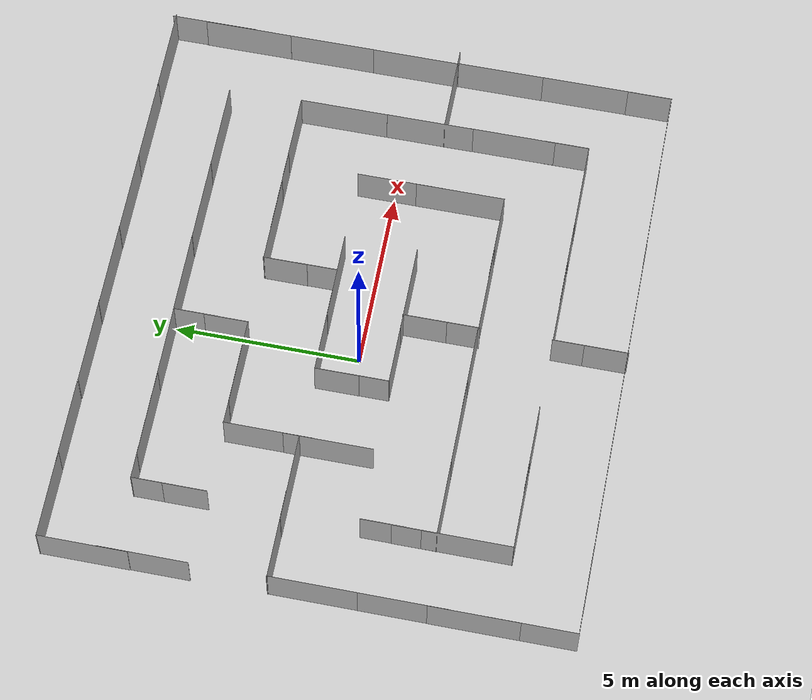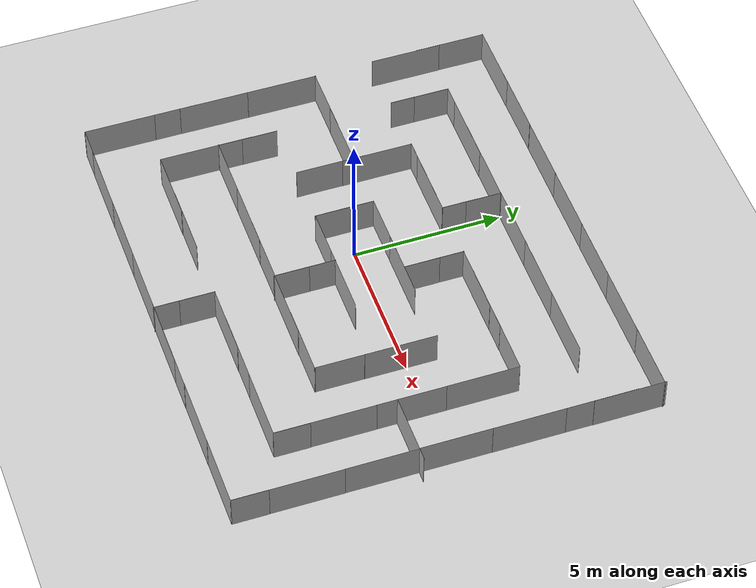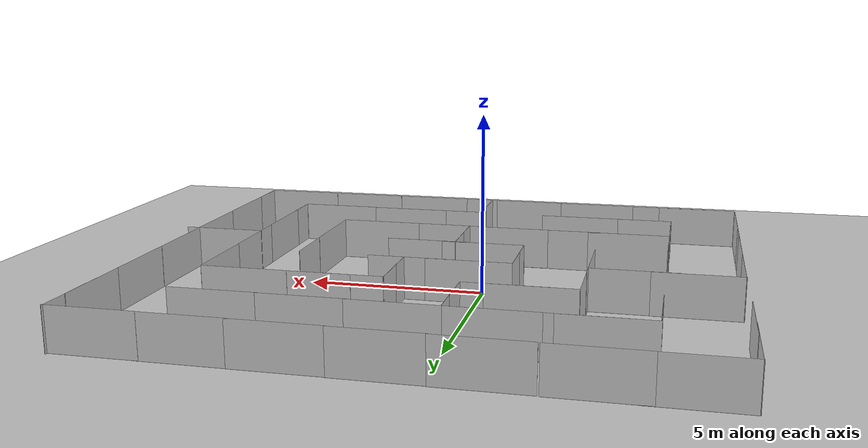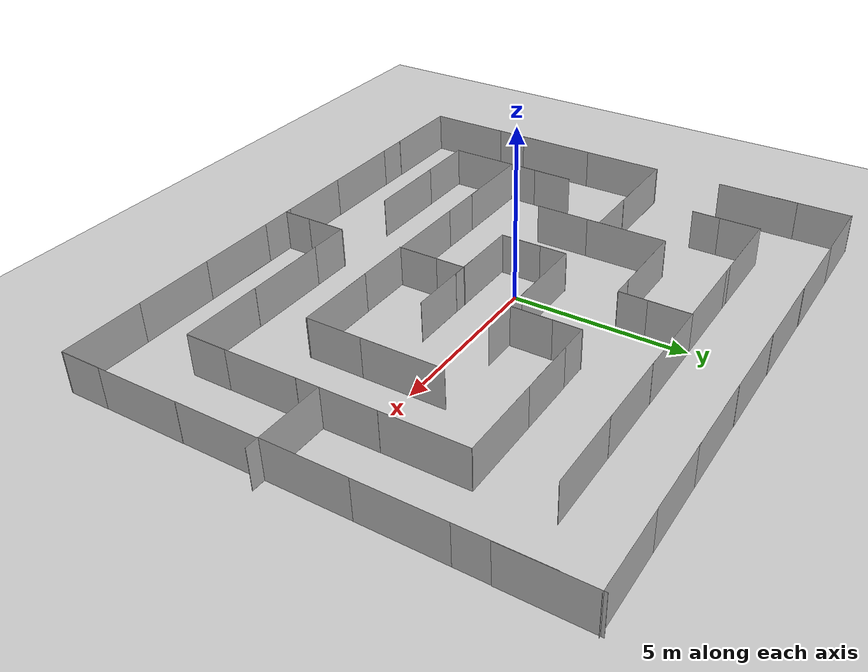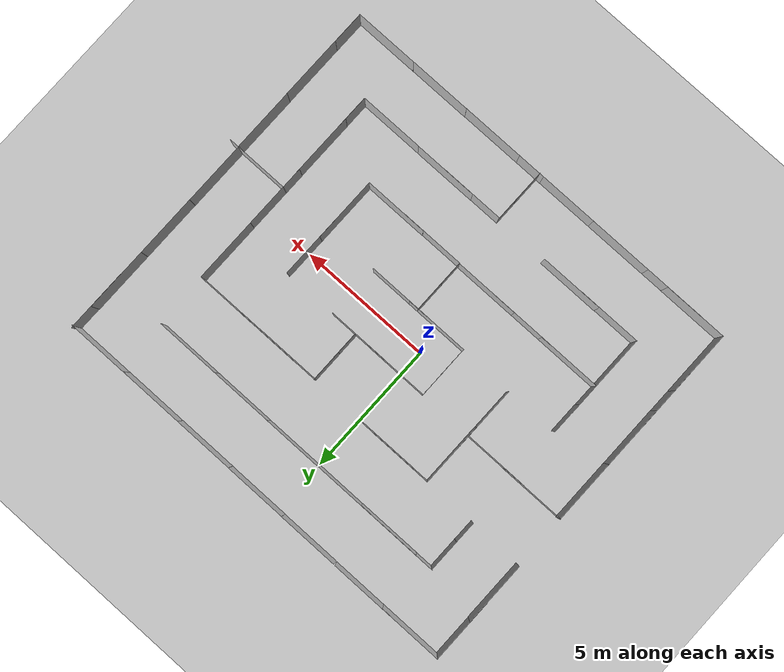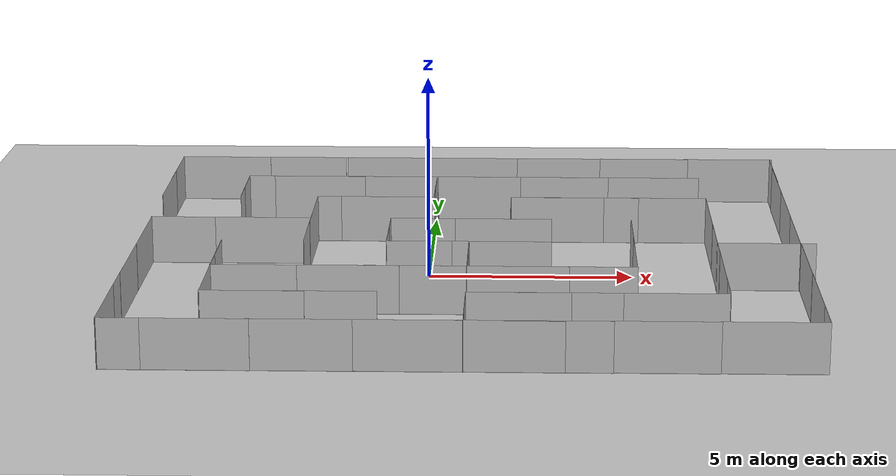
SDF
<sdf version="1.7">
 <world name="default">
  <light name="sun" type="directional">
   <pose>0 0 10 0 -0 0</pose>
   <diffuse>0.8 0.8 0.8 1</diffuse>
   <specular>0.2 0.2 0.2 1</specular>
   <attenuation>
    <range>1000</range>
    <constant>0.9</constant>
    <linear>0.01</linear>
    <quadratic>0.001</quadratic>
   </attenuation>
   <direction>-0.5 0.1 -0.9</direction>
   <spot><inner_angle>0</inner_angle><outer_angle>0</outer_angle><falloff>0</falloff></spot>
  </light>
  <model name="ground_plane">
   <static>1</static>
   <link name="link">
    <collision name="collision">
     <geometry><plane><normal>0 0 1</normal><size>100 100</size></plane></geometry>
     <surface>
      <contact><collide_bitmask>65535</collide_bitmask></contact>
      <friction><ode><mu>100</mu><mu2>50</mu2></ode></friction>
     </surface>
    </collision>
    <visual name="visual">
     <cast_shadows>0</cast_shadows>
     <geometry><plane><normal>0 0 1</normal><size>100 100</size></plane></geometry>
     <material>
      <script><uri>file://media/materials/scripts/gazebo.material</uri><name>Gazebo/Grey</name></script>
     </material>
    </visual>
   </link>
  </model>
  <gravity>0 0 -9.8</gravity>
  <magnetic_field>6e-06 2.3e-05 -4.2e-05</magnetic_field>
  <atmosphere type="adiabatic"/>
  <physics type="ode">
   <max_step_size>0.001</max_step_size>
   <real_time_factor>1</real_time_factor>
   <real_time_update_rate>1000</real_time_update_rate>
  </physics>
  <scene><ambient>0.4 0.4 0.4 1</ambient><background>0.7 0.7 0.7 1</background><shadows>1</shadows></scene>
  <audio><device>default</device></audio>
  <spherical_coordinates>
   <surface_model>EARTH_WGS84</surface_model>
   <latitude_deg>0</latitude_deg>
   <longitude_deg>0</longitude_deg>
   <elevation>0</elevation>
   <heading_deg>0</heading_deg>
  </spherical_coordinates>
  <model name="nist_maze_wall_240">
   <static>1</static>
   <link name="nist__maze_wall_240_link">
    <collision name="collision">
     <geometry>
      <mesh><uri>model://nist_maze_wall_240/meshes/nist_maze_wall_240.dae</uri><scale>1 1 1</scale></mesh>
     </geometry>
    </collision>
    <visual name="visual">
     <geometry>
      <mesh><uri>model://nist_maze_wall_240/meshes/nist_maze_wall_240.dae</uri><scale>1 1 1</scale></mesh>
     </geometry>
    </visual>
   </link>
   <pose>1.40515 0.390342 0.602034 0 -1.56897 0</pose>
  </model>
  <model name="nist_maze_wall_120">
   <static>1</static>
   <link name="nist_maze_wall_120_link">
    <collision name="collision">
     <geometry>
      <mesh><uri>model://nist_maze_wall_120/meshes/nist_maze_wall_120.dae</uri><scale>1 1 1</scale></mesh>
     </geometry>
    </collision>
    <visual name="visual">
     <geometry>
      <mesh><uri>model://nist_maze_wall_120/meshes/nist_maze_wall_120.dae</uri><scale>1 1 1</scale></mesh>
     </geometry>
    </visual>
   </link>
   <pose>-1.59821 0.408043 0 0 0 -1.57317</pose>
  </model>
  <model name="nist_maze_wall_120_clone">
   <static>1</static>
   <link name="nist_maze_wall_120_link">
    <collision name="collision">
     <geometry>
      <mesh><uri>model://nist_maze_wall_120/meshes/nist_maze_wall_120.dae</uri><scale>1 1 1</scale></mesh>
     </geometry>
    </collision>
    <visual name="visual">
     <geometry>
      <mesh><uri>model://nist_maze_wall_120/meshes/nist_maze_wall_120.dae</uri><scale>1 1 1</scale></mesh>
     </geometry>
    </visual>
   </link>
   <pose>-1.59657 -0.40071 0 0 0 -1.57317</pose>
  </model>
  <model name="nist_maze_wall_240_clone">
   <static>1</static>
   <link name="nist__maze_wall_240_link">
    <collision name="collision">
     <geometry>
      <mesh><uri>model://nist_maze_wall_240/meshes/nist_maze_wall_240.dae</uri><scale>1 1 1</scale></mesh>
     </geometry>
    </collision>
    <visual name="visual">
     <geometry>
      <mesh><uri>model://nist_maze_wall_240/meshes/nist_maze_wall_240.dae</uri><scale>1 1 1</scale></mesh>
     </geometry>
    </visual>
   </link>
   <pose>1.39248 -1.59308 0.602034 0 -1.56897 0</pose>
  </model>
  <model name="nist_maze_wall_240_clone_clone">
   <static>1</static>
   <link name="nist__maze_wall_240_link">
    <collision name="collision">
     <geometry>
      <mesh><uri>model://nist_maze_wall_240/meshes/nist_maze_wall_240.dae</uri><scale>1 1 1</scale></mesh>
     </geometry>
    </collision>
    <visual name="visual">
     <geometry>
      <mesh><uri>model://nist_maze_wall_240/meshes/nist_maze_wall_240.dae</uri><scale>1 1 1</scale></mesh>
     </geometry>
    </visual>
   </link>
   <pose>2.99602 -1.59428 0.602034 0 -1.56897 0</pose>
  </model>
  <model name="nist_maze_wall_240_clone_clone_0">
   <static>1</static>
   <link name="nist__maze_wall_240_link">
    <collision name="collision">
     <geometry>
      <mesh><uri>model://nist_maze_wall_240/meshes/nist_maze_wall_240.dae</uri><scale>1 1 1</scale></mesh>
     </geometry>
    </collision>
    <visual name="visual">
     <geometry>
      <mesh><uri>model://nist_maze_wall_240/meshes/nist_maze_wall_240.dae</uri><scale>1 1 1</scale></mesh>
     </geometry>
    </visual>
   </link>
   <pose>3.01566 0.386097 0.602034 0 -1.56897 0</pose>
  </model>
  <model name="nist_maze_wall_240_clone_clone_clone">
   <static>1</static>
   <link name="nist__maze_wall_240_link">
    <collision name="collision">
     <geometry>
      <mesh><uri>model://nist_maze_wall_240/meshes/nist_maze_wall_240.dae</uri><scale>1 1 1</scale></mesh>
     </geometry>
    </collision>
    <visual name="visual">
     <geometry>
      <mesh><uri>model://nist_maze_wall_240/meshes/nist_maze_wall_240.dae</uri><scale>1 1 1</scale></mesh>
     </geometry>
    </visual>
   </link>
   <pose>4.39011 -1.3813 0.602118 -1.57332 -1.56897 -1.5e-05</pose>
  </model>
  <model name="nist_maze_wall_240_clone_clone_clone_clone">
   <static>1</static>
   <link name="nist__maze_wall_240_link">
    <collision name="collision">
     <geometry>
      <mesh><uri>model://nist_maze_wall_240/meshes/nist_maze_wall_240.dae</uri><scale>1 1 1</scale></mesh>
     </geometry>
    </collision>
    <visual name="visual">
     <geometry>
      <mesh><uri>model://nist_maze_wall_240/meshes/nist_maze_wall_240.dae</uri><scale>1 1 1</scale></mesh>
     </geometry>
    </visual>
   </link>
   <pose>4.38361 -2.99384 0.602118 -1.57332 -1.56897 -1.5e-05</pose>
  </model>
  <model name="nist_maze_wall_240_clone_clone_clone_0">
   <static>1</static>
   <link name="nist__maze_wall_240_link">
    <collision name="collision">
     <geometry>
      <mesh><uri>model://nist_maze_wall_240/meshes/nist_maze_wall_240.dae</uri><scale>1 1 1</scale></mesh>
     </geometry>
    </collision>
    <visual name="visual">
     <geometry>
      <mesh><uri>model://nist_maze_wall_240/meshes/nist_maze_wall_240.dae</uri><scale>1 1 1</scale></mesh>
     </geometry>
    </visual>
   </link>
   <pose>4.99951 -3.61411 0.602034 0 -1.56897 0</pose>
  </model>
  <model name="nist_maze_wall_240_clone_clone_clone_1">
   <static>1</static>
   <link name="nist__maze_wall_240_link">
    <collision name="collision">
     <geometry>
      <mesh><uri>model://nist_maze_wall_240/meshes/nist_maze_wall_240.dae</uri><scale>1 1 1</scale></mesh>
     </geometry>
    </collision>
    <visual name="visual">
     <geometry>
      <mesh><uri>model://nist_maze_wall_240/meshes/nist_maze_wall_240.dae</uri><scale>1 1 1</scale></mesh>
     </geometry>
    </visual>
   </link>
   <pose>3.39906 -3.62246 0.602034 0 -1.56897 0</pose>
  </model>
  <model name="nist_maze_wall_120_clone_0">
   <static>1</static>
   <link name="nist_maze_wall_120_link">
    <collision name="collision">
     <geometry>
      <mesh><uri>model://nist_maze_wall_120/meshes/nist_maze_wall_120.dae</uri><scale>1 1 1</scale></mesh>
     </geometry>
    </collision>
    <visual name="visual">
     <geometry>
      <mesh><uri>model://nist_maze_wall_120/meshes/nist_maze_wall_120.dae</uri><scale>1 1 1</scale></mesh>
     </geometry>
    </visual>
   </link>
   <pose>0.399402 -2.45221 0 0 0 -1.57317</pose>
  </model>
  <model name="nist_maze_wall_120_clone_1">
   <static>1</static>
   <link name="nist_maze_wall_120_link">
    <collision name="collision">
     <geometry>
      <mesh><uri>model://nist_maze_wall_120/meshes/nist_maze_wall_120.dae</uri><scale>1 1 1</scale></mesh>
     </geometry>
    </collision>
    <visual name="visual">
     <geometry>
      <mesh><uri>model://nist_maze_wall_120/meshes/nist_maze_wall_120.dae</uri><scale>1 1 1</scale></mesh>
     </geometry>
    </visual>
   </link>
   <pose>0.399606 -1.56878 0 0 0 -1.57317</pose>
  </model>
  <model name="nist_maze_wall_240_clone_clone_clone_1_clone">
   <static>1</static>
   <link name="nist__maze_wall_240_link">
    <collision name="collision">
     <geometry>
      <mesh><uri>model://nist_maze_wall_240/meshes/nist_maze_wall_240.dae</uri><scale>1 1 1</scale></mesh>
     </geometry>
    </collision>
    <visual name="visual">
     <geometry>
      <mesh><uri>model://nist_maze_wall_240/meshes/nist_maze_wall_240.dae</uri><scale>1 1 1</scale></mesh>
     </geometry>
    </visual>
   </link>
   <pose>0.97815 -3.60634 0.602034 0 -1.56897 0</pose>
  </model>
  <model name="nist_maze_wall_240_clone_clone_clone_1_clone_clone">
   <static>1</static>
   <link name="nist__maze_wall_240_link">
    <collision name="collision">
     <geometry>
      <mesh><uri>model://nist_maze_wall_240/meshes/nist_maze_wall_240.dae</uri><scale>1 1 1</scale></mesh>
     </geometry>
    </collision>
    <visual name="visual">
     <geometry>
      <mesh><uri>model://nist_maze_wall_240/meshes/nist_maze_wall_240.dae</uri><scale>1 1 1</scale></mesh>
     </geometry>
    </visual>
   </link>
   <pose>-0.586526 -3.60882 0.602034 0 -1.56897 0</pose>
  </model>
  <model name="nist_maze_wall_240_clone_clone_clone_clone_0">
   <static>1</static>
   <link name="nist__maze_wall_240_link">
    <collision name="collision">
     <geometry>
      <mesh><uri>model://nist_maze_wall_240/meshes/nist_maze_wall_240.dae</uri><scale>1 1 1</scale></mesh>
     </geometry>
    </collision>
    <visual name="visual">
     <geometry>
      <mesh><uri>model://nist_maze_wall_240/meshes/nist_maze_wall_240.dae</uri><scale>1 1 1</scale></mesh>
     </geometry>
    </visual>
   </link>
   <pose>-3.60878 -0.967798 0.602118 -1.57329 -1.56897 -4.5e-05</pose>
  </model>
  <model name="nist_maze_wall_240_clone_clone_clone_1_clone_clone_clone">
   <static>1</static>
   <link name="nist__maze_wall_240_link">
    <collision name="collision">
     <geometry>
      <mesh><uri>model://nist_maze_wall_240/meshes/nist_maze_wall_240.dae</uri><scale>1 1 1</scale></mesh>
     </geometry>
    </collision>
    <visual name="visual">
     <geometry>
      <mesh><uri>model://nist_maze_wall_240/meshes/nist_maze_wall_240.dae</uri><scale>1 1 1</scale></mesh>
     </geometry>
    </visual>
   </link>
   <pose>-2.62357 -3.60866 0.602034 0 -1.56897 0</pose>
  </model>
  <model name="nist_maze_wall_120_clone_1_clone">
   <static>1</static>
   <link name="nist_maze_wall_120_link">
    <collision name="collision">
     <geometry>
      <mesh><uri>model://nist_maze_wall_120/meshes/nist_maze_wall_120.dae</uri><scale>1 1 1</scale></mesh>
     </geometry>
    </collision>
    <visual name="visual">
     <geometry>
      <mesh><uri>model://nist_maze_wall_120/meshes/nist_maze_wall_120.dae</uri><scale>1 1 1</scale></mesh>
     </geometry>
    </visual>
   </link>
   <pose>-5.60658 -2.42083 0 0 0 -1.57317</pose>
  </model>
  <model name="nist_maze_wall_120_clone_1_clone_clone">
   <static>1</static>
   <link name="nist_maze_wall_120_link">
    <collision name="collision">
     <geometry>
      <mesh><uri>model://nist_maze_wall_120/meshes/nist_maze_wall_120.dae</uri><scale>1 1 1</scale></mesh>
     </geometry>
    </collision>
    <visual name="visual">
     <geometry>
      <mesh><uri>model://nist_maze_wall_120/meshes/nist_maze_wall_120.dae</uri><scale>1 1 1</scale></mesh>
     </geometry>
    </visual>
   </link>
   <pose>-5.59718 -1.59661 0 0 0 -1.57317</pose>
  </model>
  <model name="nist_maze_wall_240_clone_clone_clone_clone_0_clone">
   <static>1</static>
   <link name="nist__maze_wall_240_link">
    <collision name="collision">
     <geometry>
      <mesh><uri>model://nist_maze_wall_240/meshes/nist_maze_wall_240.dae</uri><scale>1 1 1</scale></mesh>
     </geometry>
    </collision>
    <visual name="visual">
     <geometry>
      <mesh><uri>model://nist_maze_wall_240/meshes/nist_maze_wall_240.dae</uri><scale>1 1 1</scale></mesh>
     </geometry>
    </visual>
   </link>
   <pose>-3.59983 0.616268 0.602118 -1.57329 -1.56897 -4.5e-05</pose>
  </model>
  <model name="nist_maze_wall_120_clone_1_clone_1">
   <static>1</static>
   <link name="nist_maze_wall_120_link">
    <collision name="collision">
     <geometry>
      <mesh><uri>model://nist_maze_wall_120/meshes/nist_maze_wall_120.dae</uri><scale>1 1 1</scale></mesh>
     </geometry>
    </collision>
    <visual name="visual">
     <geometry>
      <mesh><uri>model://nist_maze_wall_120/meshes/nist_maze_wall_120.dae</uri><scale>1 1 1</scale></mesh>
     </geometry>
    </visual>
   </link>
   <pose>1.38877 2.41337 0 0 0 -1.57317</pose>
  </model>
  <model name="nist_maze_wall_120_clone_1_clone_0">
   <static>1</static>
   <link name="nist_maze_wall_120_link">
    <collision name="collision">
     <geometry>
      <mesh><uri>model://nist_maze_wall_120/meshes/nist_maze_wall_120.dae</uri><scale>1 1 1</scale></mesh>
     </geometry>
    </collision>
    <visual name="visual">
     <geometry>
      <mesh><uri>model://nist_maze_wall_120/meshes/nist_maze_wall_120.dae</uri><scale>1 1 1</scale></mesh>
     </geometry>
    </visual>
   </link>
   <pose>1.39138 1.58684 0 0 0 -1.57317</pose>
  </model>
  <model name="nist_maze_wall_240_clone_clone_0_clone">
   <static>1</static>
   <link name="nist__maze_wall_240_link">
    <collision name="collision">
     <geometry>
      <mesh><uri>model://nist_maze_wall_240/meshes/nist_maze_wall_240.dae</uri><scale>1 1 1</scale></mesh>
     </geometry>
    </collision>
    <visual name="visual">
     <geometry>
      <mesh><uri>model://nist_maze_wall_240/meshes/nist_maze_wall_240.dae</uri><scale>1 1 1</scale></mesh>
     </geometry>
    </visual>
   </link>
   <pose>4.37899 2.39128 0.602034 0 -1.56897 0</pose>
  </model>
  <model name="nist_maze_wall_240_clone_clone_0_clone_clone">
   <static>1</static>
   <link name="nist__maze_wall_240_link">
    <collision name="collision">
     <geometry>
      <mesh><uri>model://nist_maze_wall_240/meshes/nist_maze_wall_240.dae</uri><scale>1 1 1</scale></mesh>
     </geometry>
    </collision>
    <visual name="visual">
     <geometry>
      <mesh><uri>model://nist_maze_wall_240/meshes/nist_maze_wall_240.dae</uri><scale>1 1 1</scale></mesh>
     </geometry>
    </visual>
   </link>
   <pose>6.99947 2.40069 0.602034 0 -1.56897 0</pose>
  </model>
  <model name="nist_maze_wall_240_clone_clone_0_clone_0">
   <static>1</static>
   <link name="nist__maze_wall_240_link">
    <collision name="collision">
     <geometry>
      <mesh><uri>model://nist_maze_wall_240/meshes/nist_maze_wall_240.dae</uri><scale>1 1 1</scale></mesh>
     </geometry>
    </collision>
    <visual name="visual">
     <geometry>
      <mesh><uri>model://nist_maze_wall_240/meshes/nist_maze_wall_240.dae</uri><scale>1 1 1</scale></mesh>
     </geometry>
    </visual>
   </link>
   <pose>5.27167 2.39789 0.602034 0 -1.56897 0</pose>
  </model>
  <model name="nist_maze_wall_240_clone_clone_clone_clone_1">
   <static>1</static>
   <link name="nist__maze_wall_240_link">
    <collision name="collision">
     <geometry>
      <mesh><uri>model://nist_maze_wall_240/meshes/nist_maze_wall_240.dae</uri><scale>1 1 1</scale></mesh>
     </geometry>
    </collision>
    <visual name="visual">
     <geometry>
      <mesh><uri>model://nist_maze_wall_240/meshes/nist_maze_wall_240.dae</uri><scale>1 1 1</scale></mesh>
     </geometry>
    </visual>
   </link>
   <pose>6.39615 0.598142 0.602096 -1.57329 -1.56897 -4.5e-05</pose>
  </model>
  <model name="nist_maze_wall_240_clone_clone_clone_clone_2">
   <static>1</static>
   <link name="nist__maze_wall_240_link">
    <collision name="collision">
     <geometry>
      <mesh><uri>model://nist_maze_wall_240/meshes/nist_maze_wall_240.dae</uri><scale>1 1 1</scale></mesh>
     </geometry>
    </collision>
    <visual name="visual">
     <geometry>
      <mesh><uri>model://nist_maze_wall_240/meshes/nist_maze_wall_240.dae</uri><scale>1 1 1</scale></mesh>
     </geometry>
    </visual>
   </link>
   <pose>6.39314 -1.80115 0.60214 -1.57329 -1.56897 -4.5e-05</pose>
  </model>
  <model name="nist_maze_wall_240_clone_clone_clone_clone_2_clone">
   <static>1</static>
   <link name="nist__maze_wall_240_link">
    <collision name="collision">
     <geometry>
      <mesh><uri>model://nist_maze_wall_240/meshes/nist_maze_wall_240.dae</uri><scale>1 1 1</scale></mesh>
     </geometry>
    </collision>
    <visual name="visual">
     <geometry>
      <mesh><uri>model://nist_maze_wall_240/meshes/nist_maze_wall_240.dae</uri><scale>1 1 1</scale></mesh>
     </geometry>
    </visual>
   </link>
   <pose>6.39256 -4.07253 0.60214 -1.57329 -1.56897 -4.5e-05</pose>
  </model>
  <model name="nist_maze_wall_120_clone_1_clone_0_clone">
   <static>1</static>
   <link name="nist_maze_wall_120_link">
    <collision name="collision">
     <geometry>
      <mesh><uri>model://nist_maze_wall_120/meshes/nist_maze_wall_120.dae</uri><scale>1 1 1</scale></mesh>
     </geometry>
    </collision>
    <visual name="visual">
     <geometry>
      <mesh><uri>model://nist_maze_wall_120/meshes/nist_maze_wall_120.dae</uri><scale>1 1 1</scale></mesh>
     </geometry>
    </visual>
   </link>
   <pose>6.39509 -4.40326 0 0 0 -1.57317</pose>
  </model>
  <model name="nist_maze_wall_240_clone_clone_clone_0_clone">
   <static>1</static>
   <link name="nist__maze_wall_240_link">
    <collision name="collision">
     <geometry>
      <mesh><uri>model://nist_maze_wall_240/meshes/nist_maze_wall_240.dae</uri><scale>1 1 1</scale></mesh>
     </geometry>
    </collision>
    <visual name="visual">
     <geometry>
      <mesh><uri>model://nist_maze_wall_240/meshes/nist_maze_wall_240.dae</uri><scale>1 1 1</scale></mesh>
     </geometry>
    </visual>
   </link>
   <pose>6.98618 -5.60469 0.602034 0 -1.56897 0</pose>
  </model>
  <model name="nist_maze_wall_240_clone_clone_clone_0_clone_0">
   <static>1</static>
   <link name="nist__maze_wall_240_link">
    <collision name="collision">
     <geometry>
      <mesh><uri>model://nist_maze_wall_240/meshes/nist_maze_wall_240.dae</uri><scale>1 1 1</scale></mesh>
     </geometry>
    </collision>
    <visual name="visual">
     <geometry>
      <mesh><uri>model://nist_maze_wall_240/meshes/nist_maze_wall_240.dae</uri><scale>1 1 1</scale></mesh>
     </geometry>
    </visual>
   </link>
   <pose>4.59441 -5.60146 0.602034 0 -1.56897 0</pose>
  </model>
  <model name="nist_maze_wall_240_clone_clone_clone_0_clone_1">
   <static>1</static>
   <link name="nist__maze_wall_240_link">
    <collision name="collision">
     <geometry>
      <mesh><uri>model://nist_maze_wall_240/meshes/nist_maze_wall_240.dae</uri><scale>1 1 1</scale></mesh>
     </geometry>
    </collision>
    <visual name="visual">
     <geometry>
      <mesh><uri>model://nist_maze_wall_240/meshes/nist_maze_wall_240.dae</uri><scale>1 1 1</scale></mesh>
     </geometry>
    </visual>
   </link>
   <pose>3.41617 -5.60808 0.602034 0 -1.56897 0</pose>
  </model>
  <model name="nist_maze_wall_240_clone_clone_clone_0_clone_1_clone">
   <static>1</static>
   <link name="nist__maze_wall_240_link">
    <collision name="collision">
     <geometry>
      <mesh><uri>model://nist_maze_wall_240/meshes/nist_maze_wall_240.dae</uri><scale>1 1 1</scale></mesh>
     </geometry>
    </collision>
    <visual name="visual">
     <geometry>
      <mesh><uri>model://nist_maze_wall_240/meshes/nist_maze_wall_240.dae</uri><scale>1 1 1</scale></mesh>
     </geometry>
    </visual>
   </link>
   <pose>-0.979388 -5.58795 0.602034 0 -1.56897 0</pose>
  </model>
  <model name="nist_maze_wall_240_clone_clone_clone_0_clone_1_clone_clone">
   <static>1</static>
   <link name="nist__maze_wall_240_link">
    <collision name="collision">
     <geometry>
      <mesh><uri>model://nist_maze_wall_240/meshes/nist_maze_wall_240.dae</uri><scale>1 1 1</scale></mesh>
     </geometry>
    </collision>
    <visual name="visual">
     <geometry>
      <mesh><uri>model://nist_maze_wall_240/meshes/nist_maze_wall_240.dae</uri><scale>1 1 1</scale></mesh>
     </geometry>
    </visual>
   </link>
   <pose>-2.63072 -5.59677 0.60071 0 -1.56897 0</pose>
  </model>
  <model name="nist_maze_wall_240_clone_clone_clone_clone_0_clone_0">
   <static>1</static>
   <link name="nist__maze_wall_240_link">
    <collision name="collision">
     <geometry>
      <mesh><uri>model://nist_maze_wall_240/meshes/nist_maze_wall_240.dae</uri><scale>1 1 1</scale></mesh>
     </geometry>
    </collision>
    <visual name="visual">
     <geometry>
      <mesh><uri>model://nist_maze_wall_240/meshes/nist_maze_wall_240.dae</uri><scale>1 1 1</scale></mesh>
     </geometry>
    </visual>
   </link>
   <pose>-5.61453 -5.00064 0.602118 -1.57329 -1.56897 -4.5e-05</pose>
  </model>
  <model name="nist_maze_wall_120_clone_1_clone_2">
   <static>1</static>
   <link name="nist_maze_wall_120_link">
    <collision name="collision">
     <geometry>
      <mesh><uri>model://nist_maze_wall_120/meshes/nist_maze_wall_120.dae</uri><scale>1 1 1</scale></mesh>
     </geometry>
    </collision>
    <visual name="visual">
     <geometry>
      <mesh><uri>model://nist_maze_wall_120/meshes/nist_maze_wall_120.dae</uri><scale>1 1 1</scale></mesh>
     </geometry>
    </visual>
   </link>
   <pose>0.417438 -5.57984 0 0 0 -1.57317</pose>
  </model>
  <model name="nist_maze_wall_120_clone_1_clone_3">
   <static>1</static>
   <link name="nist_maze_wall_120_link">
    <collision name="collision">
     <geometry>
      <mesh><uri>model://nist_maze_wall_120/meshes/nist_maze_wall_120.dae</uri><scale>1 1 1</scale></mesh>
     </geometry>
    </collision>
    <visual name="visual">
     <geometry>
      <mesh><uri>model://nist_maze_wall_120/meshes/nist_maze_wall_120.dae</uri><scale>1 1 1</scale></mesh>
     </geometry>
    </visual>
   </link>
   <pose>0.414734 -6.427 0 0 0 -1.57317</pose>
  </model>
  <model name="nist_maze_wall_240_clone_clone_clone_0_clone_1_clone_clone_0">
   <static>1</static>
   <link name="nist__maze_wall_240_link">
    <collision name="collision">
     <geometry>
      <mesh><uri>model://nist_maze_wall_240/meshes/nist_maze_wall_240.dae</uri><scale>1 1 1</scale></mesh>
     </geometry>
    </collision>
    <visual name="visual">
     <geometry>
      <mesh><uri>model://nist_maze_wall_240/meshes/nist_maze_wall_240.dae</uri><scale>1 1 1</scale></mesh>
     </geometry>
    </visual>
   </link>
   <pose>1.0048 -7.60288 0.602034 0 -1.56897 0</pose>
  </model>
  <model name="nist_maze_wall_240_clone_clone_clone_0_clone_1_clone_clone_1">
   <static>1</static>
   <link name="nist__maze_wall_240_link">
    <collision name="collision">
     <geometry>
      <mesh><uri>model://nist_maze_wall_240/meshes/nist_maze_wall_240.dae</uri><scale>1 1 1</scale></mesh>
     </geometry>
    </collision>
    <visual name="visual">
     <geometry>
      <mesh><uri>model://nist_maze_wall_240/meshes/nist_maze_wall_240.dae</uri><scale>1 1 1</scale></mesh>
     </geometry>
    </visual>
   </link>
   <pose>-1.34618 -7.60269 0.602034 0 -1.56897 0</pose>
  </model>
  <model name="nist_maze_wall_240_clone_clone_clone_0_clone_1_clone_clone_2">
   <static>1</static>
   <link name="nist__maze_wall_240_link">
    <collision name="collision">
     <geometry>
      <mesh><uri>model://nist_maze_wall_240/meshes/nist_maze_wall_240.dae</uri><scale>1 1 1</scale></mesh>
     </geometry>
    </collision>
    <visual name="visual">
     <geometry>
      <mesh><uri>model://nist_maze_wall_240/meshes/nist_maze_wall_240.dae</uri><scale>1 1 1</scale></mesh>
     </geometry>
    </visual>
   </link>
   <pose>-3.65461 -7.60467 0.602034 0 -1.56897 0</pose>
  </model>
  <model name="nist_maze_wall_240_clone_clone_clone_0_clone_1_clone_clone_3">
   <static>1</static>
   <link name="nist__maze_wall_240_link">
    <collision name="collision">
     <geometry>
      <mesh><uri>model://nist_maze_wall_240/meshes/nist_maze_wall_240.dae</uri><scale>1 1 1</scale></mesh>
     </geometry>
    </collision>
    <visual name="visual">
     <geometry>
      <mesh><uri>model://nist_maze_wall_240/meshes/nist_maze_wall_240.dae</uri><scale>1 1 1</scale></mesh>
     </geometry>
    </visual>
   </link>
   <pose>-4.60571 -7.60082 0.602034 0 -1.56897 0</pose>
  </model>
  <model name="nist_maze_wall_240_clone_0">
   <static>1</static>
   <link name="nist__maze_wall_240_link">
    <collision name="collision">
     <geometry>
      <mesh><uri>model://nist_maze_wall_240/meshes/nist_maze_wall_240.dae</uri><scale>1 1 1</scale></mesh>
     </geometry>
    </collision>
    <visual name="visual">
     <geometry>
      <mesh><uri>model://nist_maze_wall_240/meshes/nist_maze_wall_240.dae</uri><scale>1 1 1</scale></mesh>
     </geometry>
    </visual>
   </link>
   <pose>-0.595336 2.39938 0.601973 0 -1.56897 0</pose>
  </model>
  <model name="nist_maze_wall_240_clone_1">
   <static>1</static>
   <link name="nist__maze_wall_240_link">
    <collision name="collision">
     <geometry>
      <mesh><uri>model://nist_maze_wall_240/meshes/nist_maze_wall_240.dae</uri><scale>1 1 1</scale></mesh>
     </geometry>
    </collision>
    <visual name="visual">
     <geometry>
      <mesh><uri>model://nist_maze_wall_240/meshes/nist_maze_wall_240.dae</uri><scale>1 1 1</scale></mesh>
     </geometry>
    </visual>
   </link>
   <pose>0.01066 2.39543 0.602034 0 -1.56897 0</pose>
  </model>
  <model name="nist_maze_wall_240_clone_1_clone">
   <static>1</static>
   <link name="nist__maze_wall_240_link">
    <collision name="collision">
     <geometry>
      <mesh><uri>model://nist_maze_wall_240/meshes/nist_maze_wall_240.dae</uri><scale>1 1 1</scale></mesh>
     </geometry>
    </collision>
    <visual name="visual">
     <geometry>
      <mesh><uri>model://nist_maze_wall_240/meshes/nist_maze_wall_240.dae</uri><scale>1 1 1</scale></mesh>
     </geometry>
    </visual>
   </link>
   <pose>-2.99903 0.39279 0.602034 0 -1.56897 0</pose>
  </model>
  <model name="nist_maze_wall_240_clone_1_clone_clone">
   <static>1</static>
   <link name="nist__maze_wall_240_link">
    <collision name="collision">
     <geometry>
      <mesh><uri>model://nist_maze_wall_240/meshes/nist_maze_wall_240.dae</uri><scale>1 1 1</scale></mesh>
     </geometry>
    </collision>
    <visual name="visual">
     <geometry>
      <mesh><uri>model://nist_maze_wall_240/meshes/nist_maze_wall_240.dae</uri><scale>1 1 1</scale></mesh>
     </geometry>
    </visual>
   </link>
   <pose>-4.6116 0.401665 0.602034 0 -1.56897 0</pose>
  </model>
  <model name="nist_maze_wall_240_clone_clone_clone_clone_0_clone_0_clone">
   <static>1</static>
   <link name="nist__maze_wall_240_link">
    <collision name="collision">
     <geometry>
      <mesh><uri>model://nist_maze_wall_240/meshes/nist_maze_wall_240.dae</uri><scale>1 1 1</scale></mesh>
     </geometry>
    </collision>
    <visual name="visual">
     <geometry>
      <mesh><uri>model://nist_maze_wall_240/meshes/nist_maze_wall_240.dae</uri><scale>1 1 1</scale></mesh>
     </geometry>
    </visual>
   </link>
   <pose>-7.60244 -1.37264 0.602118 -1.57329 -1.56897 -4.5e-05</pose>
  </model>
  <model name="nist_maze_wall_240_clone_clone_clone_clone_0_clone_0_clone_0">
   <static>1</static>
   <link name="nist__maze_wall_240_link">
    <collision name="collision">
     <geometry>
      <mesh><uri>model://nist_maze_wall_240/meshes/nist_maze_wall_240.dae</uri><scale>1 1 1</scale></mesh>
     </geometry>
    </collision>
    <visual name="visual">
     <geometry>
      <mesh><uri>model://nist_maze_wall_240/meshes/nist_maze_wall_240.dae</uri><scale>1 1 1</scale></mesh>
     </geometry>
    </visual>
   </link>
   <pose>-7.61006 -3.72948 0.602118 -1.57329 -1.56897 -4.5e-05</pose>
  </model>
  <model name="nist_maze_wall_240_clone_clone_clone_clone_0_clone_0_clone_1">
   <static>1</static>
   <link name="nist__maze_wall_240_link">
    <collision name="collision">
     <geometry>
      <mesh><uri>model://nist_maze_wall_240/meshes/nist_maze_wall_240.dae</uri><scale>1 1 1</scale></mesh>
     </geometry>
    </collision>
    <visual name="visual">
     <geometry>
      <mesh><uri>model://nist_maze_wall_240/meshes/nist_maze_wall_240.dae</uri><scale>1 1 1</scale></mesh>
     </geometry>
    </visual>
   </link>
   <pose>-7.61879 -5.52545 0.602118 -1.57329 -1.56897 -4.5e-05</pose>
  </model>
  <model name="nist_maze_wall_240_clone_clone_clone_clone_0_clone_0_clone_2">
   <static>1</static>
   <link name="nist__maze_wall_240_link">
    <collision name="collision">
     <geometry>
      <mesh><uri>model://nist_maze_wall_240/meshes/nist_maze_wall_240.dae</uri><scale>1 1 1</scale></mesh>
     </geometry>
    </collision>
    <visual name="visual">
     <geometry>
      <mesh><uri>model://nist_maze_wall_240/meshes/nist_maze_wall_240.dae</uri><scale>1 1 1</scale></mesh>
     </geometry>
    </visual>
   </link>
   <pose>-7.62107 -7.01022 0.602118 -1.57329 -1.56897 -4.5e-05</pose>
  </model>
  <model name="nist_maze_wall_120_clone_1_clone_1_clone">
   <static>1</static>
   <link name="nist_maze_wall_120_link">
    <collision name="collision">
     <geometry>
      <mesh><uri>model://nist_maze_wall_120/meshes/nist_maze_wall_120.dae</uri><scale>1 1 1</scale></mesh>
     </geometry>
    </collision>
    <visual name="visual">
     <geometry>
      <mesh><uri>model://nist_maze_wall_120/meshes/nist_maze_wall_120.dae</uri><scale>1 1 1</scale></mesh>
     </geometry>
    </visual>
   </link>
   <pose>-0.596304 3.59284 0 0 0 -1.57317</pose>
  </model>
  <model name="nist_maze_wall_120_clone_1_clone_1_clone_0">
   <static>1</static>
   <link name="nist_maze_wall_120_link">
    <collision name="collision">
     <geometry>
      <mesh><uri>model://nist_maze_wall_120/meshes/nist_maze_wall_120.dae</uri><scale>1 1 1</scale></mesh>
     </geometry>
    </collision>
    <visual name="visual">
     <geometry>
      <mesh><uri>model://nist_maze_wall_120/meshes/nist_maze_wall_120.dae</uri><scale>1 1 1</scale></mesh>
     </geometry>
    </visual>
   </link>
   <pose>-0.587925 4.41592 0 0 0 -1.57317</pose>
  </model>
  <model name="nist_maze_wall_240_clone_0_clone">
   <static>1</static>
   <link name="nist__maze_wall_240_link">
    <collision name="collision">
     <geometry>
      <mesh><uri>model://nist_maze_wall_240/meshes/nist_maze_wall_240.dae</uri><scale>1 1 1</scale></mesh>
     </geometry>
    </collision>
    <visual name="visual">
     <geometry>
      <mesh><uri>model://nist_maze_wall_240/meshes/nist_maze_wall_240.dae</uri><scale>1 1 1</scale></mesh>
     </geometry>
    </visual>
   </link>
   <pose>2.39629 4.41228 0.601973 0 -1.56897 0</pose>
  </model>
  <model name="nist_maze_wall_240_clone_0_clone_0">
   <static>1</static>
   <link name="nist__maze_wall_240_link">
    <collision name="collision">
     <geometry>
      <mesh><uri>model://nist_maze_wall_240/meshes/nist_maze_wall_240.dae</uri><scale>1 1 1</scale></mesh>
     </geometry>
    </collision>
    <visual name="visual">
     <geometry>
      <mesh><uri>model://nist_maze_wall_240/meshes/nist_maze_wall_240.dae</uri><scale>1 1 1</scale></mesh>
     </geometry>
    </visual>
   </link>
   <pose>4.62896 4.40823 0.601973 0 -1.56897 0</pose>
  </model>
  <model name="nist_maze_wall_240_clone_0_clone_1">
   <static>1</static>
   <link name="nist__maze_wall_240_link">
    <collision name="collision">
     <geometry>
      <mesh><uri>model://nist_maze_wall_240/meshes/nist_maze_wall_240.dae</uri><scale>1 1 1</scale></mesh>
     </geometry>
    </collision>
    <visual name="visual">
     <geometry>
      <mesh><uri>model://nist_maze_wall_240/meshes/nist_maze_wall_240.dae</uri><scale>1 1 1</scale></mesh>
     </geometry>
    </visual>
   </link>
   <pose>6.95569 4.4063 0.601973 0 -1.56897 0</pose>
  </model>
  <model name="nist_maze_wall_240_clone_clone_0_clone_clone_clone">
   <static>1</static>
   <link name="nist__maze_wall_240_link">
    <collision name="collision">
     <geometry>
      <mesh><uri>model://nist_maze_wall_240/meshes/nist_maze_wall_240.dae</uri><scale>1 1 1</scale></mesh>
     </geometry>
    </collision>
    <visual name="visual">
     <geometry>
      <mesh><uri>model://nist_maze_wall_240/meshes/nist_maze_wall_240.dae</uri><scale>1 1 1</scale></mesh>
     </geometry>
    </visual>
   </link>
   <pose>9.3815 -1.60774 0.601955 0 -1.56897 0</pose>
  </model>
  <model name="nist_maze_wall_240_clone_clone_clone_clone_3">
   <static>1</static>
   <link name="nist__maze_wall_240_link">
    <collision name="collision">
     <geometry>
      <mesh><uri>model://nist_maze_wall_240/meshes/nist_maze_wall_240.dae</uri><scale>1 1 1</scale></mesh>
     </geometry>
    </collision>
    <visual name="visual">
     <geometry>
      <mesh><uri>model://nist_maze_wall_240/meshes/nist_maze_wall_240.dae</uri><scale>1 1 1</scale></mesh>
     </geometry>
    </visual>
   </link>
   <pose>8.39995 -3.4024 0.602118 -1.57332 -1.56897 -1.5e-05</pose>
  </model>
  <model name="nist_maze_wall_240_clone_clone_clone_clone_4">
   <static>1</static>
   <link name="nist__maze_wall_240_link">
    <collision name="collision">
     <geometry>
      <mesh><uri>model://nist_maze_wall_240/meshes/nist_maze_wall_240.dae</uri><scale>1 1 1</scale></mesh>
     </geometry>
    </collision>
    <visual name="visual">
     <geometry>
      <mesh><uri>model://nist_maze_wall_240/meshes/nist_maze_wall_240.dae</uri><scale>1 1 1</scale></mesh>
     </geometry>
    </visual>
   </link>
   <pose>8.39992 -5.77568 0.602118 -1.57332 -1.56897 -1.5e-05</pose>
  </model>
  <model name="nist_maze_wall_120_clone_0_clone">
   <static>1</static>
   <link name="nist_maze_wall_120_link">
    <collision name="collision">
     <geometry>
      <mesh><uri>model://nist_maze_wall_120/meshes/nist_maze_wall_120.dae</uri><scale>1 1 1</scale></mesh>
     </geometry>
    </collision>
    <visual name="visual">
     <geometry>
      <mesh><uri>model://nist_maze_wall_120/meshes/nist_maze_wall_120.dae</uri><scale>1 1 1</scale></mesh>
     </geometry>
    </visual>
   </link>
   <pose>8.39763 -6.37314 0 0 0 -1.57317</pose>
  </model>
  <model name="nist_maze_wall_240_clone_clone_clone_0_clone_clone">
   <static>1</static>
   <link name="nist__maze_wall_240_link">
    <collision name="collision">
     <geometry>
      <mesh><uri>model://nist_maze_wall_240/meshes/nist_maze_wall_240.dae</uri><scale>1 1 1</scale></mesh>
     </geometry>
    </collision>
    <visual name="visual">
     <geometry>
      <mesh><uri>model://nist_maze_wall_240/meshes/nist_maze_wall_240.dae</uri><scale>1 1 1</scale></mesh>
     </geometry>
    </visual>
   </link>
   <pose>9.00237 -7.58961 0.602034 0 -1.56897 0</pose>
  </model>
  <model name="nist_maze_wall_240_clone_clone_clone_0_clone_clone_0">
   <static>1</static>
   <link name="nist__maze_wall_240_link">
    <collision name="collision">
     <geometry>
      <mesh><uri>model://nist_maze_wall_240/meshes/nist_maze_wall_240.dae</uri><scale>1 1 1</scale></mesh>
     </geometry>
    </collision>
    <visual name="visual">
     <geometry>
      <mesh><uri>model://nist_maze_wall_240/meshes/nist_maze_wall_240.dae</uri><scale>1 1 1</scale></mesh>
     </geometry>
    </visual>
   </link>
   <pose>6.64762 -7.59486 0.602034 0 -1.56897 0</pose>
  </model>
  <model name="nist_maze_wall_240_clone_clone_clone_0_clone_clone_1">
   <static>1</static>
   <link name="nist__maze_wall_240_link">
    <collision name="collision">
     <geometry>
      <mesh><uri>model://nist_maze_wall_240/meshes/nist_maze_wall_240.dae</uri><scale>1 1 1</scale></mesh>
     </geometry>
    </collision>
    <visual name="visual">
     <geometry>
      <mesh><uri>model://nist_maze_wall_240/meshes/nist_maze_wall_240.dae</uri><scale>1 1 1</scale></mesh>
     </geometry>
    </visual>
   </link>
   <pose>4.30335 -7.60071 0.602034 0 -1.56897 0</pose>
  </model>
  <model name="nist_maze_wall_240_clone_clone_clone_0_clone_clone_2">
   <static>1</static>
   <link name="nist__maze_wall_240_link">
    <collision name="collision">
     <geometry>
      <mesh><uri>model://nist_maze_wall_240/meshes/nist_maze_wall_240.dae</uri><scale>1 1 1</scale></mesh>
     </geometry>
    </collision>
    <visual name="visual">
     <geometry>
      <mesh><uri>model://nist_maze_wall_240/meshes/nist_maze_wall_240.dae</uri><scale>1 1 1</scale></mesh>
     </geometry>
    </visual>
   </link>
   <pose>3.24851 -7.60097 0.602034 0 -1.56897 0</pose>
  </model>
  <model name="nist_maze_wall_240_clone_clone_clone_clone_1_clone">
   <static>1</static>
   <link name="nist__maze_wall_240_link">
    <collision name="collision">
     <geometry>
      <mesh><uri>model://nist_maze_wall_240/meshes/nist_maze_wall_240.dae</uri><scale>1 1 1</scale></mesh>
     </geometry>
    </collision>
    <visual name="visual">
     <geometry>
      <mesh><uri>model://nist_maze_wall_240/meshes/nist_maze_wall_240.dae</uri><scale>1 1 1</scale></mesh>
     </geometry>
    </visual>
   </link>
   <pose>8.39197 -1.03606 0.602096 -1.57329 -1.56897 -4.5e-05</pose>
  </model>
  <model name="nist_maze_wall_240_clone_clone_clone_clone_1_clone_0">
   <static>1</static>
   <link name="nist__maze_wall_240_link">
    <collision name="collision">
     <geometry>
      <mesh><uri>model://nist_maze_wall_240/meshes/nist_maze_wall_240.dae</uri><scale>1 1 1</scale></mesh>
     </geometry>
    </collision>
    <visual name="visual">
     <geometry>
      <mesh><uri>model://nist_maze_wall_240/meshes/nist_maze_wall_240.dae</uri><scale>1 1 1</scale></mesh>
     </geometry>
    </visual>
   </link>
   <pose>8.40115 1.36538 0.602096 -1.57329 -1.56897 -4.5e-05</pose>
  </model>
  <model name="nist_maze_wall_240_clone_clone_clone_clone_1_clone_1">
   <static>1</static>
   <link name="nist__maze_wall_240_link">
    <collision name="collision">
     <geometry>
      <mesh><uri>model://nist_maze_wall_240/meshes/nist_maze_wall_240.dae</uri><scale>1 1 1</scale></mesh>
     </geometry>
    </collision>
    <visual name="visual">
     <geometry>
      <mesh><uri>model://nist_maze_wall_240/meshes/nist_maze_wall_240.dae</uri><scale>1 1 1</scale></mesh>
     </geometry>
    </visual>
   </link>
   <pose>8.40685 3.71426 0.602096 -1.57329 -1.56897 -4.5e-05</pose>
  </model>
  <model name="nist_maze_wall_240_clone_clone_clone_clone_1_clone_2">
   <static>1</static>
   <link name="nist__maze_wall_240_link">
    <collision name="collision">
     <geometry>
      <mesh><uri>model://nist_maze_wall_240/meshes/nist_maze_wall_240.dae</uri><scale>1 1 1</scale></mesh>
     </geometry>
    </collision>
    <visual name="visual">
     <geometry>
      <mesh><uri>model://nist_maze_wall_240/meshes/nist_maze_wall_240.dae</uri><scale>1 1 1</scale></mesh>
     </geometry>
    </visual>
   </link>
   <pose>8.41991 4.67083 0.602096 -1.57329 -1.56897 -4.5e-05</pose>
  </model>
  <model name="nist_maze_wall_240_clone_0_clone_1_clone">
   <static>1</static>
   <link name="nist__maze_wall_240_link">
    <collision name="collision">
     <geometry>
      <mesh><uri>model://nist_maze_wall_240/meshes/nist_maze_wall_240.dae</uri><scale>1 1 1</scale></mesh>
     </geometry>
    </collision>
    <visual name="visual">
     <geometry>
      <mesh><uri>model://nist_maze_wall_240/meshes/nist_maze_wall_240.dae</uri><scale>1 1 1</scale></mesh>
     </geometry>
    </visual>
   </link>
   <pose>9.07999 6.38715 0.601973 0 -1.56897 0</pose>
  </model>
  <model name="nist_maze_wall_240_clone_0_clone_1_clone_0">
   <static>1</static>
   <link name="nist__maze_wall_240_link">
    <collision name="collision">
     <geometry>
      <mesh><uri>model://nist_maze_wall_240/meshes/nist_maze_wall_240.dae</uri><scale>1 1 1</scale></mesh>
     </geometry>
    </collision>
    <visual name="visual">
     <geometry>
      <mesh><uri>model://nist_maze_wall_240/meshes/nist_maze_wall_240.dae</uri><scale>1 1 1</scale></mesh>
     </geometry>
    </visual>
   </link>
   <pose>6.79502 6.38513 0.601973 0 -1.56897 0</pose>
  </model>
  <model name="nist_maze_wall_240_clone_0_clone_1_clone_1">
   <static>1</static>
   <link name="nist__maze_wall_240_link">
    <collision name="collision">
     <geometry>
      <mesh><uri>model://nist_maze_wall_240/meshes/nist_maze_wall_240.dae</uri><scale>1 1 1</scale></mesh>
     </geometry>
    </collision>
    <visual name="visual">
     <geometry>
      <mesh><uri>model://nist_maze_wall_240/meshes/nist_maze_wall_240.dae</uri><scale>1 1 1</scale></mesh>
     </geometry>
    </visual>
   </link>
   <pose>4.52748 6.38574 0.601973 0 -1.56897 0</pose>
  </model>
  <model name="nist_maze_wall_240_clone_0_clone_1_clone_2">
   <static>1</static>
   <link name="nist__maze_wall_240_link">
    <collision name="collision">
     <geometry>
      <mesh><uri>model://nist_maze_wall_240/meshes/nist_maze_wall_240.dae</uri><scale>1 1 1</scale></mesh>
     </geometry>
    </collision>
    <visual name="visual">
     <geometry>
      <mesh><uri>model://nist_maze_wall_240/meshes/nist_maze_wall_240.dae</uri><scale>1 1 1</scale></mesh>
     </geometry>
    </visual>
   </link>
   <pose>2.17189 6.39182 0.601973 0 -1.56897 0</pose>
  </model>
  <model name="nist_maze_wall_240_clone_0_clone_clone">
   <static>1</static>
   <link name="nist__maze_wall_240_link">
    <collision name="collision">
     <geometry>
      <mesh><uri>model://nist_maze_wall_240/meshes/nist_maze_wall_240.dae</uri><scale>1 1 1</scale></mesh>
     </geometry>
    </collision>
    <visual name="visual">
     <geometry>
      <mesh><uri>model://nist_maze_wall_240/meshes/nist_maze_wall_240.dae</uri><scale>1 1 1</scale></mesh>
     </geometry>
    </visual>
   </link>
   <pose>0.045661 4.40598 0.601973 0 -1.56897 0</pose>
  </model>
  <model name="nist_maze_wall_240_clone_0_clone_clone_clone">
   <static>1</static>
   <link name="nist__maze_wall_240_link">
    <collision name="collision">
     <geometry>
      <mesh><uri>model://nist_maze_wall_240/meshes/nist_maze_wall_240.dae</uri><scale>1 1 1</scale></mesh>
     </geometry>
    </collision>
    <visual name="visual">
     <geometry>
      <mesh><uri>model://nist_maze_wall_240/meshes/nist_maze_wall_240.dae</uri><scale>1 1 1</scale></mesh>
     </geometry>
    </visual>
   </link>
   <pose>-1.90881 4.40387 0.600812 0 -1.56897 0</pose>
  </model>
  <model name="nist_maze_wall_240_clone_0_clone_clone_clone_clone">
   <static>1</static>
   <link name="nist__maze_wall_240_link">
    <collision name="collision">
     <geometry>
      <mesh><uri>model://nist_maze_wall_240/meshes/nist_maze_wall_240.dae</uri><scale>1 1 1</scale></mesh>
     </geometry>
    </collision>
    <visual name="visual">
     <geometry>
      <mesh><uri>model://nist_maze_wall_240/meshes/nist_maze_wall_240.dae</uri><scale>1 1 1</scale></mesh>
     </geometry>
    </visual>
   </link>
   <pose>-2.60417 4.40599 0.600812 0 -1.56897 0</pose>
  </model>
  <model name="nist_maze_wall_120_clone_2">
   <static>1</static>
   <link name="nist_maze_wall_120_link">
    <collision name="collision">
     <geometry>
      <mesh><uri>model://nist_maze_wall_120/meshes/nist_maze_wall_120.dae</uri><scale>1 1 1</scale></mesh>
     </geometry>
    </collision>
    <visual name="visual">
     <geometry>
      <mesh><uri>model://nist_maze_wall_120/meshes/nist_maze_wall_120.dae</uri><scale>1 1 1</scale></mesh>
     </geometry>
    </visual>
   </link>
   <pose>-5.58288 4.41029 0 0 0 -1.57317</pose>
  </model>
  <model name="nist_maze_wall_120_clone_3">
   <static>1</static>
   <link name="nist_maze_wall_120_link">
    <collision name="collision">
     <geometry>
      <mesh><uri>model://nist_maze_wall_120/meshes/nist_maze_wall_120.dae</uri><scale>1 1 1</scale></mesh>
     </geometry>
    </collision>
    <visual name="visual">
     <geometry>
      <mesh><uri>model://nist_maze_wall_120/meshes/nist_maze_wall_120.dae</uri><scale>1 1 1</scale></mesh>
     </geometry>
    </visual>
   </link>
   <pose>-5.58626 3.59646 0 0 0 -1.57317</pose>
  </model>
  <model name="nist_maze_wall_240_clone_0_clone_1_clone_2_clone">
   <static>1</static>
   <link name="nist__maze_wall_240_link">
    <collision name="collision">
     <geometry>
      <mesh><uri>model://nist_maze_wall_240/meshes/nist_maze_wall_240.dae</uri><scale>1 1 1</scale></mesh>
     </geometry>
    </collision>
    <visual name="visual">
     <geometry>
      <mesh><uri>model://nist_maze_wall_240/meshes/nist_maze_wall_240.dae</uri><scale>1 1 1</scale></mesh>
     </geometry>
    </visual>
   </link>
   <pose>-0.121897 6.39924 0.601973 0 -1.56897 0</pose>
  </model>
  <model name="nist_maze_wall_240_clone_0_clone_1_clone_2_clone_0">
   <static>1</static>
   <link name="nist__maze_wall_240_link">
    <collision name="collision">
     <geometry>
      <mesh><uri>model://nist_maze_wall_240/meshes/nist_maze_wall_240.dae</uri><scale>1 1 1</scale></mesh>
     </geometry>
    </collision>
    <visual name="visual">
     <geometry>
      <mesh><uri>model://nist_maze_wall_240/meshes/nist_maze_wall_240.dae</uri><scale>1 1 1</scale></mesh>
     </geometry>
    </visual>
   </link>
   <pose>-2.55825 6.40559 0.601973 0 -1.56897 0</pose>
  </model>
  <model name="nist_maze_wall_240_clone_0_clone_1_clone_2_clone_1">
   <static>1</static>
   <link name="nist__maze_wall_240_link">
    <collision name="collision">
     <geometry>
      <mesh><uri>model://nist_maze_wall_240/meshes/nist_maze_wall_240.dae</uri><scale>1 1 1</scale></mesh>
     </geometry>
    </collision>
    <visual name="visual">
     <geometry>
      <mesh><uri>model://nist_maze_wall_240/meshes/nist_maze_wall_240.dae</uri><scale>1 1 1</scale></mesh>
     </geometry>
    </visual>
   </link>
   <pose>-4.63819 6.40373 0.601973 0 -1.56897 0</pose>
  </model>
  <model name="nist_maze_wall_240_clone_clone_clone_clone_0_clone_0_clone_clone">
   <static>1</static>
   <link name="nist__maze_wall_240_link">
    <collision name="collision">
     <geometry>
      <mesh><uri>model://nist_maze_wall_240/meshes/nist_maze_wall_240.dae</uri><scale>1 1 1</scale></mesh>
     </geometry>
    </collision>
    <visual name="visual">
     <geometry>
      <mesh><uri>model://nist_maze_wall_240/meshes/nist_maze_wall_240.dae</uri><scale>1 1 1</scale></mesh>
     </geometry>
    </visual>
   </link>
   <pose>-7.6303 4.61745 0.602118 -1.57329 -1.56897 -4.5e-05</pose>
  </model>
  <model name="nist_maze_wall_240_clone_clone_clone_clone_0_clone_0_clone_clone_0">
   <static>1</static>
   <link name="nist__maze_wall_240_link">
    <collision name="collision">
     <geometry>
      <mesh><uri>model://nist_maze_wall_240/meshes/nist_maze_wall_240.dae</uri><scale>1 1 1</scale></mesh>
     </geometry>
    </collision>
    <visual name="visual">
     <geometry>
      <mesh><uri>model://nist_maze_wall_240/meshes/nist_maze_wall_240.dae</uri><scale>1 1 1</scale></mesh>
     </geometry>
    </visual>
   </link>
   <pose>-7.62329 3.03589 0.602118 -1.57329 -1.56897 -4.5e-05</pose>
  </model>
 </world>
</sdf>
